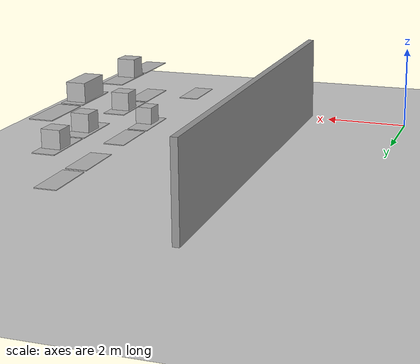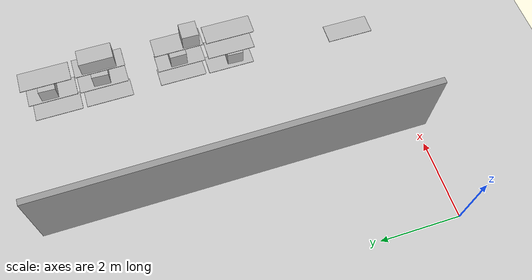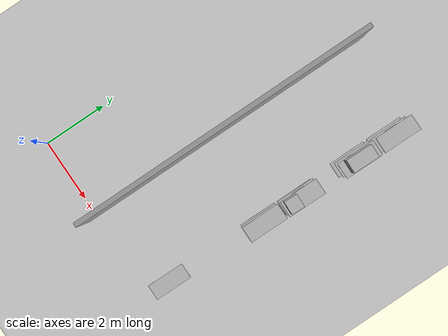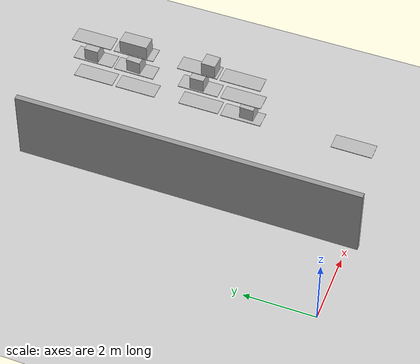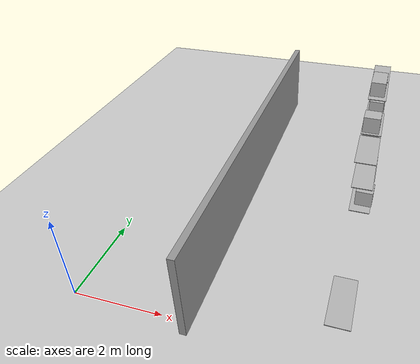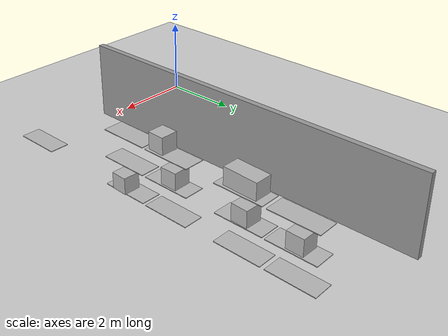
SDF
<sdf version="1.7">
 <world name="default">
  <model name="ground_plane">
   <static>1</static>
   <link name="link">
    <collision name="collision">
     <geometry><plane><normal>0 0 1</normal><size>300 300</size></plane></geometry>
     <surface>
      <contact><collide_bitmask>65535</collide_bitmask></contact>
      <friction><ode><mu>100</mu><mu2>50</mu2></ode></friction>
     </surface>
    </collision>
    <visual name="visual">
     <geometry><plane><normal>0 0 1</normal><size>100 100</size></plane></geometry>
     <material>
      <script><uri>file://media/materials/scripts/gazebo.material</uri><name>Gazebo/Grey</name></script>
     </material>
    </visual>
   </link>
  </model>
  <model name="CuboQR12">
   <link name="link">
    <pose>0 0 0.25 0 -0 0</pose>
    <inertial>
     <mass>0.39</mass>
     <inertia><ixx>0.00058</ixx><ixy>0</ixy><ixz>0</ixz><iyy>0.00058</iyy><iyz>0</iyz><izz>0.00019</izz></inertia>
    </inertial>
    <collision name="collision"><geometry><box><size>0.4 0.4 0.4</size></box></geometry></collision>
    <visual name="visual">
     <geometry><box><size>0.4 0.4 0.4</size></box></geometry>
     <material>
      <script>
       <uri>model://Caja/materials/scripts</uri>
       <uri>model://Caja/materials/textures</uri>
       <name>Caja/Diffuse</name>
      </script>
     </material>
    </visual>
   </link>
   <pose>5.50959 3.87543 0.594128 2.2e-05 -1.4e-05 -0.039015</pose>
   <static>1</static>
  </model>
  <model name="CuboQR14">
   <link name="link">
    <pose>0 0 0.25 0 -0 0</pose>
    <inertial>
     <mass>0.39</mass>
     <inertia><ixx>0.00058</ixx><ixy>0</ixy><ixz>0</ixz><iyy>0.00058</iyy><iyz>0</iyz><izz>0.00019</izz></inertia>
    </inertial>
    <collision name="collision"><geometry><box><size>0.4 0.4 0.4</size></box></geometry></collision>
    <visual name="visual">
     <geometry><box><size>0.4 0.4 0.4</size></box></geometry>
     <material>
      <script>
       <uri>model://Caja/materials/scripts</uri>
       <uri>model://Caja/materials/textures</uri>
       <name>Caja/Diffuse</name>
      </script>
     </material>
    </visual>
   </link>
   <pose>5.45074 7.19681 1.28045 6.6e-05 -3e-06 -0.051107</pose>
   <static>1</static>
  </model>
  <model name="CuboQR17">
   <link name="link">
    <pose>0 0 0.25 0 -0 0</pose>
    <inertial>
     <mass>0.39</mass>
     <inertia><ixx>0.00058</ixx><ixy>0</ixy><ixz>0</ixz><iyy>0.00058</iyy><iyz>0</iyz><izz>0.00019</izz></inertia>
    </inertial>
    <collision name="collision"><geometry><box><size>0.4 0.4 0.4</size></box></geometry></collision>
    <visual name="visual">
     <geometry><box><size>0.4 0.4 0.4</size></box></geometry>
     <material>
      <script>
       <uri>model://Caja/materials/scripts</uri>
       <uri>model://Caja/materials/textures</uri>
       <name>Caja/Diffuse</name>
      </script>
     </material>
    </visual>
   </link>
   <pose>5.69081 8.45349 1.52593 1.5708 6e-06 -1.59061</pose>
   <static>1</static>
  </model>
  <model name="CuboQR27">
   <link name="link">
    <pose>0 0 0.25 0 -0 0</pose>
    <inertial>
     <mass>0.39</mass>
     <inertia><ixx>0.00058</ixx><ixy>0</ixy><ixz>0</ixz><iyy>0.00058</iyy><iyz>0</iyz><izz>0.00019</izz></inertia>
    </inertial>
    <collision name="collision"><geometry><box><size>0.4 0.4 0.4</size></box></geometry></collision>
    <visual name="visual">
     <geometry><box><size>0.4 0.4 0.4</size></box></geometry>
     <material>
      <script>
       <uri>model://Caja/materials/scripts</uri>
       <uri>model://Caja/materials/textures</uri>
       <name>Caja/Diffuse</name>
      </script>
     </material>
    </visual>
   </link>
   <pose>5.43264 5.31939 1.28624 1.3e-05 -2.3e-05 0.003723</pose>
   <static>1</static>
  </model>
  <model name="CuboQR29">
   <link name="link">
    <pose>0 0 0.25 0 -0 0</pose>
    <inertial>
     <mass>0.39</mass>
     <inertia><ixx>0.00058</ixx><ixy>0</ixy><ixz>0</ixz><iyy>0.00058</iyy><iyz>0</iyz><izz>0.00019</izz></inertia>
    </inertial>
    <collision name="collision"><geometry><box><size>0.4 0.4 0.4</size></box></geometry></collision>
    <visual name="visual">
     <geometry><box><size>0.4 0.4 0.4</size></box></geometry>
     <material>
      <script>
       <uri>model://Caja/materials/scripts</uri>
       <uri>model://Caja/materials/textures</uri>
       <name>Caja/Diffuse</name>
      </script>
     </material>
    </visual>
   </link>
   <pose>5.41781 4.97441 1.96483 1.6e-05 -1e-05 -0.024073</pose>
   <static>1</static>
  </model>
  <model name="Estanterias2">
   <link name="Wall_7">
    <pose>-9.54199 -5.19373 -0.244468 0 -0 1.5708</pose>
    <inertial>
     <inertia><ixx>0</ixx><ixy>0</ixy><ixz>0</ixz><iyy>0</iyy><iyz>0</iyz><izz>0</izz></inertia>
     <mass>0</mass>
    </inertial>
    <visual name="Wall_7_Visual">
     <pose>0 0 1.25 0 -0 0</pose>
     <geometry><box><size>9.74609 0.15 2.08966</size></box></geometry>
     <material>
      <script><uri>file://media/materials/scripts/gazebo.material</uri><name>Gazebo/Grey</name></script>
      <ambient>1 1 1 1</ambient>
      <shader type="pixel"/>
      <diffuse>0.7 0.7 0.7 1</diffuse>
      <specular>0.01 0.01 0.01 1</specular>
      <emissive>0 0 0 1</emissive>
     </material>
     <meta><layer>0</layer></meta>
    </visual>
    <collision name="Wall_7_Collision">
     <pose>0 0 1.25 0 -0 0</pose>
     <geometry><box><size>9.74609 0.15 2.08966</size></box></geometry>
    </collision>
   </link>
   <static>1</static>
   <pose>12.1235 9.79263 0 0 -0 0</pose>
  </model>
  <model name="CuboQR8_clone">
   <link name="link">
    <pose>0 0 0.25 0 -0 0</pose>
    <inertial>
     <mass>0.39</mass>
     <inertia><ixx>0.00058</ixx><ixy>0</ixy><ixz>0</ixz><iyy>0.00058</iyy><iyz>0</iyz><izz>0.00019</izz></inertia>
    </inertial>
    <collision name="collision"><geometry><box><size>0.4 0.8 0.4</size></box></geometry></collision>
    <visual name="visual">
     <geometry><box><size>0.4 0.8 0.4</size></box></geometry>
     <material>
      <script>
       <uri>model://Caja/materials/scripts</uri>
       <uri>model://Caja/materials/textures</uri>
       <name>Caja/Diffuse</name>
      </script>
     </material>
    </visual>
   </link>
   <pose>5.42477 7.16275 1.96227 -0.019933 -7e-06 -0.017982</pose>
   <static>1</static>
  </model>
  <model name="unit_box_clone_clone_0">
   <link name="link">
    <inertial>
     <mass>0.00922354</mass>
     <inertia>
      <ixx>0.00104733</ixx>
      <ixy>0</ixy>
      <ixz>0</ixz>
      <iyy>0.000178965</iyy>
      <iyz>0</iyz>
      <izz>0.00122588</izz>
     </inertia>
    </inertial>
    <visual name="visual">
     <geometry><box><size>0.482252 1.16718 0.016436</size></box></geometry>
     <material>
      <script>
       <uri>model://unit_box/materials/scripts</uri>
       <uri>model://unit_box/materials/textures</uri>
       <name>shelveMat/Diffuse</name>
      </script>
      <shader type="pixel"/>
     </material>
    </visual>
    <collision name="collision"><geometry><box><size>0.482252 1.16718 0.016436</size></box></geometry></collision>
   </link>
   <static>1</static>
   <pose>5.44106 8.41308 2.00375 0 -1e-06 -0.002445</pose>
  </model>
  <model name="unit_box_clone_clone_1">
   <link name="link">
    <inertial>
     <mass>0.00922354</mass>
     <inertia>
      <ixx>0.00104733</ixx>
      <ixy>0</ixy>
      <ixz>0</ixz>
      <iyy>0.000178965</iyy>
      <iyz>0</iyz>
      <izz>0.00122588</izz>
     </inertia>
    </inertial>
    <visual name="visual">
     <geometry><box><size>0.482252 1.16718 0.016436</size></box></geometry>
     <material>
      <script>
       <uri>model://unit_box/materials/scripts</uri>
       <uri>model://unit_box/materials/textures</uri>
       <name>shelveMat/Diffuse</name>
      </script>
      <shader type="pixel"/>
     </material>
    </visual>
    <collision name="collision"><geometry><box><size>0.482252 1.16718 0.016436</size></box></geometry></collision>
   </link>
   <static>1</static>
   <pose>5.43752 7.15894 2.00375 0 -1e-06 -0.002445</pose>
  </model>
  <model name="unit_box_clone_clone_2">
   <link name="link">
    <inertial>
     <mass>0.00922354</mass>
     <inertia>
      <ixx>0.00104733</ixx>
      <ixy>0</ixy>
      <ixz>0</ixz>
      <iyy>0.000178965</iyy>
      <iyz>0</iyz>
      <izz>0.00122588</izz>
     </inertia>
    </inertial>
    <visual name="visual">
     <geometry><box><size>0.482252 1.16718 0.016436</size></box></geometry>
     <material>
      <script>
       <uri>model://unit_box/materials/scripts</uri>
       <uri>model://unit_box/materials/textures</uri>
       <name>shelveMat/Diffuse</name>
      </script>
      <shader type="pixel"/>
     </material>
    </visual>
    <collision name="collision"><geometry><box><size>0.482252 1.16718 0.016436</size></box></geometry></collision>
   </link>
   <static>1</static>
   <pose>5.43538 5.28617 2.00375 0 -1e-06 -0.002445</pose>
  </model>
  <model name="unit_box_clone_clone_3">
   <link name="link">
    <inertial>
     <mass>0.00922354</mass>
     <inertia>
      <ixx>0.00104733</ixx>
      <ixy>0</ixy>
      <ixz>0</ixz>
      <iyy>0.000178965</iyy>
      <iyz>0</iyz>
      <izz>0.00122588</izz>
     </inertia>
    </inertial>
    <visual name="visual">
     <geometry><box><size>0.482252 1.16718 0.016436</size></box></geometry>
     <material>
      <script>
       <uri>model://unit_box/materials/scripts</uri>
       <uri>model://unit_box/materials/textures</uri>
       <name>shelveMat/Diffuse</name>
      </script>
      <shader type="pixel"/>
     </material>
    </visual>
    <collision name="collision"><geometry><box><size>0.482252 1.16718 0.016436</size></box></geometry></collision>
   </link>
   <static>1</static>
   <pose>5.42568 4.04152 2.00375 0 -1e-06 -0.002445</pose>
  </model>
  <model name="unit_box_clone_clone_clone_clone_1_clone_2_clone">
   <link name="link">
    <inertial>
     <mass>0.00922354</mass>
     <inertia>
      <ixx>0.00104733</ixx>
      <ixy>0</ixy>
      <ixz>0</ixz>
      <iyy>0.000178965</iyy>
      <iyz>0</iyz>
      <izz>0.00122588</izz>
     </inertia>
    </inertial>
    <visual name="visual">
     <geometry><box><size>0.482252 1.16718 0.016436</size></box></geometry>
     <material>
      <script>
       <uri>model://unit_box/materials/scripts</uri>
       <uri>model://unit_box/materials/textures</uri>
       <name>shelveMat/Diffuse</name>
      </script>
      <shader type="pixel"/>
     </material>
    </visual>
    <collision name="collision"><geometry><box><size>0.482252 1.16718 0.016436</size></box></geometry></collision>
   </link>
   <static>1</static>
   <pose>5.43823 8.40138 1.33212 0 -1e-06 -0.002445</pose>
  </model>
  <model name="unit_box_clone_clone_clone_clone_1_clone_2_clone_0">
   <link name="link">
    <inertial>
     <mass>0.00922354</mass>
     <inertia>
      <ixx>0.00104733</ixx>
      <ixy>0</ixy>
      <ixz>0</ixz>
      <iyy>0.000178965</iyy>
      <iyz>0</iyz>
      <izz>0.00122588</izz>
     </inertia>
    </inertial>
    <visual name="visual">
     <geometry><box><size>0.482252 1.16718 0.016436</size></box></geometry>
     <material>
      <script>
       <uri>model://unit_box/materials/scripts</uri>
       <uri>model://unit_box/materials/textures</uri>
       <name>shelveMat/Diffuse</name>
      </script>
      <shader type="pixel"/>
     </material>
    </visual>
    <collision name="collision"><geometry><box><size>0.482252 1.16718 0.016436</size></box></geometry></collision>
   </link>
   <static>1</static>
   <pose>5.42868 7.17559 1.33212 0 -1e-06 -0.002445</pose>
  </model>
  <model name="unit_box_clone_clone_clone_clone_1_clone_2_clone_1">
   <link name="link">
    <inertial>
     <mass>0.00922354</mass>
     <inertia>
      <ixx>0.00104733</ixx>
      <ixy>0</ixy>
      <ixz>0</ixz>
      <iyy>0.000178965</iyy>
      <iyz>0</iyz>
      <izz>0.00122588</izz>
     </inertia>
    </inertial>
    <visual name="visual">
     <geometry><box><size>0.482252 1.16718 0.016436</size></box></geometry>
     <material>
      <script>
       <uri>model://unit_box/materials/scripts</uri>
       <uri>model://unit_box/materials/textures</uri>
       <name>shelveMat/Diffuse</name>
      </script>
      <shader type="pixel"/>
     </material>
    </visual>
    <collision name="collision"><geometry><box><size>0.482252 1.16718 0.016436</size></box></geometry></collision>
   </link>
   <static>1</static>
   <pose>5.43149 5.27051 1.33212 0 -1e-06 -0.002445</pose>
  </model>
  <model name="unit_box_clone_clone_clone_clone_1_clone_2_clone_2">
   <link name="link">
    <inertial>
     <mass>0.00922354</mass>
     <inertia>
      <ixx>0.00104733</ixx>
      <ixy>0</ixy>
      <ixz>0</ixz>
      <iyy>0.000178965</iyy>
      <iyz>0</iyz>
      <izz>0.00122588</izz>
     </inertia>
    </inertial>
    <visual name="visual">
     <geometry><box><size>0.482252 1.16718 0.016436</size></box></geometry>
     <material>
      <script>
       <uri>model://unit_box/materials/scripts</uri>
       <uri>model://unit_box/materials/textures</uri>
       <name>shelveMat/Diffuse</name>
      </script>
      <shader type="pixel"/>
     </material>
    </visual>
    <collision name="collision"><geometry><box><size>0.482252 1.16718 0.016436</size></box></geometry></collision>
   </link>
   <static>1</static>
   <pose>5.43245 4.01415 1.33212 0 -1e-06 -0.002445</pose>
  </model>
  <model name="unit_box_clone_clone_clone_clone_1_clone_4_clone_4">
   <link name="link">
    <inertial>
     <mass>0.00922354</mass>
     <inertia>
      <ixx>0.00104733</ixx>
      <ixy>0</ixy>
      <ixz>0</ixz>
      <iyy>0.000178965</iyy>
      <iyz>0</iyz>
      <izz>0.00122588</izz>
     </inertia>
    </inertial>
    <visual name="visual">
     <geometry><box><size>0.482252 1.16718 0.016436</size></box></geometry>
     <material>
      <script>
       <uri>model://unit_box/materials/scripts</uri>
       <uri>model://unit_box/materials/textures</uri>
       <name>shelveMat/Diffuse</name>
      </script>
      <shader type="pixel"/>
     </material>
    </visual>
    <collision name="collision"><geometry><box><size>0.482252 1.16718 0.016436</size></box></geometry></collision>
   </link>
   <static>1</static>
   <pose>5.42559 8.42086 0.642962 0 -1e-06 -0.002445</pose>
  </model>
  <model name="unit_box_clone_clone_clone_clone_1_clone_4_clone_5">
   <link name="link">
    <inertial>
     <mass>0.00922354</mass>
     <inertia>
      <ixx>0.00104733</ixx>
      <ixy>0</ixy>
      <ixz>0</ixz>
      <iyy>0.000178965</iyy>
      <iyz>0</iyz>
      <izz>0.00122588</izz>
     </inertia>
    </inertial>
    <visual name="visual">
     <geometry><box><size>0.482252 1.16718 0.016436</size></box></geometry>
     <material>
      <script>
       <uri>model://unit_box/materials/scripts</uri>
       <uri>model://unit_box/materials/textures</uri>
       <name>shelveMat/Diffuse</name>
      </script>
      <shader type="pixel"/>
     </material>
    </visual>
    <collision name="collision"><geometry><box><size>0.482252 1.16718 0.016436</size></box></geometry></collision>
   </link>
   <static>1</static>
   <pose>5.42418 7.15094 0.642962 0 -1e-06 -0.002445</pose>
  </model>
  <model name="unit_box_clone_clone_clone_clone_1_clone_4_clone_6">
   <link name="link">
    <inertial>
     <mass>0.00922354</mass>
     <inertia>
      <ixx>0.00104733</ixx>
      <ixy>0</ixy>
      <ixz>0</ixz>
      <iyy>0.000178965</iyy>
      <iyz>0</iyz>
      <izz>0.00122588</izz>
     </inertia>
    </inertial>
    <visual name="visual">
     <geometry><box><size>0.482252 1.16718 0.016436</size></box></geometry>
     <material>
      <script>
       <uri>model://unit_box/materials/scripts</uri>
       <uri>model://unit_box/materials/textures</uri>
       <name>shelveMat/Diffuse</name>
      </script>
      <shader type="pixel"/>
     </material>
    </visual>
    <collision name="collision"><geometry><box><size>0.482252 1.16718 0.016436</size></box></geometry></collision>
   </link>
   <static>1</static>
   <pose>5.46322 5.26944 0.642962 0 -1e-06 -0.002445</pose>
  </model>
  <model name="unit_box_clone_clone_clone_clone_1_clone_4_clone_7">
   <link name="link">
    <inertial>
     <mass>0.00922354</mass>
     <inertia>
      <ixx>0.00104733</ixx>
      <ixy>0</ixy>
      <ixz>0</ixz>
      <iyy>0.000178965</iyy>
      <iyz>0</iyz>
      <izz>0.00122588</izz>
     </inertia>
    </inertial>
    <visual name="visual">
     <geometry><box><size>0.482252 1.16718 0.016436</size></box></geometry>
     <material>
      <script>
       <uri>model://unit_box/materials/scripts</uri>
       <uri>model://unit_box/materials/textures</uri>
       <name>shelveMat/Diffuse</name>
      </script>
      <shader type="pixel"/>
     </material>
    </visual>
    <collision name="collision"><geometry><box><size>0.482252 1.16718 0.016436</size></box></geometry></collision>
   </link>
   <static>1</static>
   <pose>5.44678 4.0172 0.642962 0 -1e-06 -0.002445</pose>
  </model>
  <model name="unit_box_clone_clone_clone_clone_1_clone_4_clone_9">
   <link name="link">
    <inertial>
     <mass>0.00922354</mass>
     <inertia>
      <ixx>0.00104733</ixx>
      <ixy>0</ixy>
      <ixz>0</ixz>
      <iyy>0.000178965</iyy>
      <iyz>0</iyz>
      <izz>0.00122588</izz>
     </inertia>
    </inertial>
    <visual name="visual">
     <geometry><box><size>0.482252 1.16718 0.016436</size></box></geometry>
     <material>
      <script>
       <uri>model://unit_box/materials/scripts</uri>
       <uri>model://unit_box/materials/textures</uri>
       <name>shelveMat/Diffuse</name>
      </script>
      <shader type="pixel"/>
     </material>
    </visual>
    <collision name="collision"><geometry><box><size>0.482252 1.16718 0.016436</size></box></geometry></collision>
   </link>
   <static>1</static>
   <pose>5.41585 0.798362 0.642962 0 -1e-06 -0.002445</pose>
  </model>
 </world>
</sdf>
